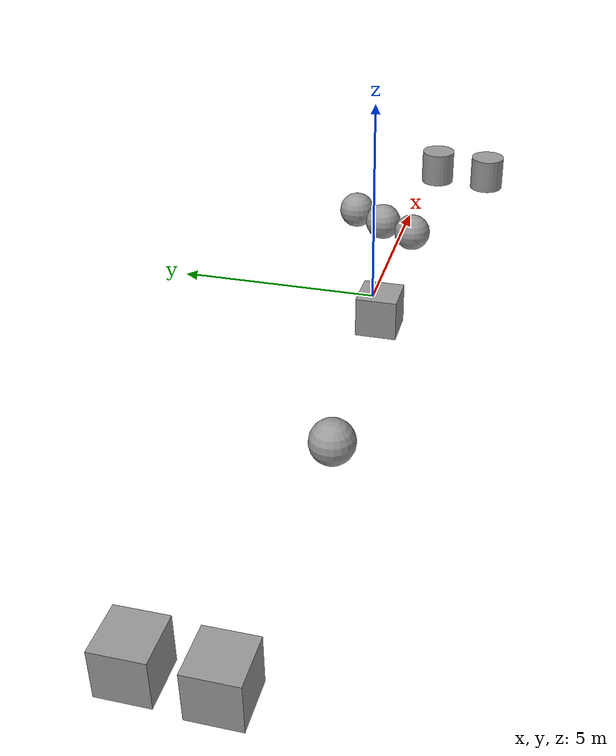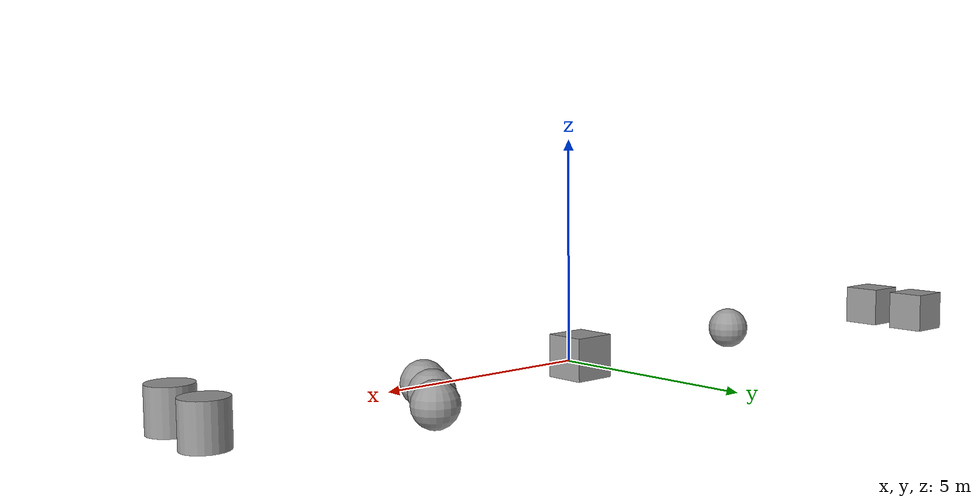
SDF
<?xml version='1.0'?>
<sdf version='1.6'>
  <model name='hall_obstacles.sdf'>
    <link name='link_0'>
      <inertial>
        <mass>2000</mass>
        <inertia>
          <ixx>333.333</ixx>
          <ixy>0</ixy>
          <ixz>0</ixz>
          <iyy>333.333</iyy>
          <iyz>0</iyz>
          <izz>333.333</izz>
        </inertia>
        <pose frame=''>0 0 0 0 -0 0</pose>
      </inertial>
      <pose frame=''>-12.2076 1.1435 0 0 -0 0</pose>
      <gravity>1</gravity>
      <self_collide>0</self_collide>
      <kinematic>0</kinematic>
      <enable_wind>0</enable_wind>
      <visual name='visual'>
        <pose frame=''>0 0 0 0 -0 0</pose>
        <geometry>
          <box>
            <size>1 1 1</size>
          </box>
        </geometry>
        <material>
          <lighting>1</lighting>
          <script>
            <uri>file://media/materials/scripts/gazebo.material</uri>
            <name>Gazebo/Grey</name>
          </script>
          <shader type='vertex'>
            <normal_map>__default__</normal_map>
          </shader>
        </material>
        <transparency>0</transparency>
        <cast_shadows>1</cast_shadows>
      </visual>
      <collision name='collision'>
        <laser_retro>0</laser_retro>
        <max_contacts>10</max_contacts>
        <pose frame=''>0 0 0 0 -0 0</pose>
        <geometry>
          <box>
            <size>1 1 1</size>
          </box>
        </geometry>
        <surface>
          <friction>
            <ode>
              <mu>1</mu>
              <mu2>1</mu2>
              <fdir1>0 0 0</fdir1>
              <slip1>0</slip1>
              <slip2>0</slip2>
            </ode>
            <torsional>
              <coefficient>1</coefficient>
              <patch_radius>0</patch_radius>
              <surface_radius>0</surface_radius>
              <use_patch_radius>1</use_patch_radius>
              <ode>
                <slip>0</slip>
              </ode>
            </torsional>
          </friction>
          <bounce>
            <restitution_coefficient>0</restitution_coefficient>
            <threshold>1e+06</threshold>
          </bounce>
          <contact>
            <collide_without_contact>0</collide_without_contact>
            <collide_without_contact_bitmask>1</collide_without_contact_bitmask>
            <collide_bitmask>1</collide_bitmask>
            <ode>
              <soft_cfm>0</soft_cfm>
              <soft_erp>0.2</soft_erp>
              <kp>1e+13</kp>
              <kd>1</kd>
              <max_vel>0.01</max_vel>
              <min_depth>0</min_depth>
            </ode>
            <bullet>
              <split_impulse>1</split_impulse>
              <split_impulse_penetration_threshold>-0.01</split_impulse_penetration_threshold>
              <soft_cfm>0</soft_cfm>
              <soft_erp>0.2</soft_erp>
              <kp>1e+13</kp>
              <kd>1</kd>
            </bullet>
          </contact>
        </surface>
      </collision>
    </link>
    <link name='link_1'>
      <inertial>
        <mass>2000</mass>
        <inertia>
          <ixx>333.333</ixx>
          <ixy>0</ixy>
          <ixz>0</ixz>
          <iyy>333.333</iyy>
          <iyz>0</iyz>
          <izz>333.333</izz>
        </inertia>
        <pose frame=''>0 0 0 0 -0 0</pose>
      </inertial>
      <pose frame=''>-12.2761 -0.378192 0 0 -0 0</pose>
      <gravity>1</gravity>
      <self_collide>0</self_collide>
      <kinematic>0</kinematic>
      <enable_wind>0</enable_wind>
      <visual name='visual'>
        <pose frame=''>0 0 0 0 -0 0</pose>
        <geometry>
          <box>
            <size>1 1 1</size>
          </box>
        </geometry>
        <material>
          <lighting>1</lighting>
          <script>
            <uri>file://media/materials/scripts/gazebo.material</uri>
            <name>Gazebo/Grey</name>
          </script>
          <shader type='vertex'>
            <normal_map>__default__</normal_map>
          </shader>
        </material>
        <transparency>0</transparency>
        <cast_shadows>1</cast_shadows>
      </visual>
      <collision name='collision'>
        <laser_retro>0</laser_retro>
        <max_contacts>10</max_contacts>
        <pose frame=''>0 0 0 0 -0 0</pose>
        <geometry>
          <box>
            <size>1 1 1</size>
          </box>
        </geometry>
        <surface>
          <friction>
            <ode>
              <mu>1</mu>
              <mu2>1</mu2>
              <fdir1>0 0 0</fdir1>
              <slip1>0</slip1>
              <slip2>0</slip2>
            </ode>
            <torsional>
              <coefficient>1</coefficient>
              <patch_radius>0</patch_radius>
              <surface_radius>0</surface_radius>
              <use_patch_radius>1</use_patch_radius>
              <ode>
                <slip>0</slip>
              </ode>
            </torsional>
          </friction>
          <bounce>
            <restitution_coefficient>0</restitution_coefficient>
            <threshold>1e+06</threshold>
          </bounce>
          <contact>
            <collide_without_contact>0</collide_without_contact>
            <collide_without_contact_bitmask>1</collide_without_contact_bitmask>
            <collide_bitmask>1</collide_bitmask>
            <ode>
              <soft_cfm>0</soft_cfm>
              <soft_erp>0.2</soft_erp>
              <kp>1e+13</kp>
              <kd>1</kd>
              <max_vel>0.01</max_vel>
              <min_depth>0</min_depth>
            </ode>
            <bullet>
              <split_impulse>1</split_impulse>
              <split_impulse_penetration_threshold>-0.01</split_impulse_penetration_threshold>
              <soft_cfm>0</soft_cfm>
              <soft_erp>0.2</soft_erp>
              <kp>1e+13</kp>
              <kd>1</kd>
            </bullet>
          </contact>
        </surface>
      </collision>
    </link>
    <link name='link_2'>
      <inertial>
        <mass>2000</mass>
        <inertia>
          <ixx>333.333</ixx>
          <ixy>0</ixy>
          <ixz>0</ixz>
          <iyy>333.333</iyy>
          <iyz>0</iyz>
          <izz>333.333</izz>
        </inertia>
        <pose frame=''>0 0 0 0 -0 0</pose>
      </inertial>
      <pose frame=''>-0.635519 -0.315968 0 0 -0 0</pose>
      <gravity>1</gravity>
      <self_collide>0</self_collide>
      <kinematic>0</kinematic>
      <enable_wind>0</enable_wind>
      <visual name='visual'>
        <pose frame=''>0 0 0 0 -0 0</pose>
        <geometry>
          <box>
            <size>1 1 1</size>
          </box>
        </geometry>
        <material>
          <lighting>1</lighting>
          <script>
            <uri>file://media/materials/scripts/gazebo.material</uri>
            <name>Gazebo/Grey</name>
          </script>
          <shader type='vertex'>
            <normal_map>__default__</normal_map>
          </shader>
        </material>
        <transparency>0</transparency>
        <cast_shadows>1</cast_shadows>
      </visual>
      <collision name='collision'>
        <laser_retro>0</laser_retro>
        <max_contacts>10</max_contacts>
        <pose frame=''>0 0 0 0 -0 0</pose>
        <geometry>
          <box>
            <size>1 1 1</size>
          </box>
        </geometry>
        <surface>
          <friction>
            <ode>
              <mu>1</mu>
              <mu2>1</mu2>
              <fdir1>0 0 0</fdir1>
              <slip1>0</slip1>
              <slip2>0</slip2>
            </ode>
            <torsional>
              <coefficient>1</coefficient>
              <patch_radius>0</patch_radius>
              <surface_radius>0</surface_radius>
              <use_patch_radius>1</use_patch_radius>
              <ode>
                <slip>0</slip>
              </ode>
            </torsional>
          </friction>
          <bounce>
            <restitution_coefficient>0</restitution_coefficient>
            <threshold>1e+06</threshold>
          </bounce>
          <contact>
            <collide_without_contact>0</collide_without_contact>
            <collide_without_contact_bitmask>1</collide_without_contact_bitmask>
            <collide_bitmask>1</collide_bitmask>
            <ode>
              <soft_cfm>0</soft_cfm>
              <soft_erp>0.2</soft_erp>
              <kp>1e+13</kp>
              <kd>1</kd>
              <max_vel>0.01</max_vel>
              <min_depth>0</min_depth>
            </ode>
            <bullet>
              <split_impulse>1</split_impulse>
              <split_impulse_penetration_threshold>-0.01</split_impulse_penetration_threshold>
              <soft_cfm>0</soft_cfm>
              <soft_erp>0.2</soft_erp>
              <kp>1e+13</kp>
              <kd>1</kd>
            </bullet>
          </contact>
        </surface>
      </collision>
    </link>
    <link name='link_3'>
      <inertial>
        <mass>1047.2</mass>
        <inertia>
          <ixx>104.72</ixx>
          <ixy>0</ixy>
          <ixz>0</ixz>
          <iyy>104.72</iyy>
          <iyz>0</iyz>
          <izz>104.72</izz>
        </inertia>
        <pose frame=''>0 0 0 0 -0 0</pose>
      </inertial>
      <pose frame=''>-6.10882 -0.518584 0 0 -0 0</pose>
      <gravity>1</gravity>
      <self_collide>0</self_collide>
      <kinematic>0</kinematic>
      <enable_wind>0</enable_wind>
      <visual name='visual'>
        <pose frame=''>0 0 0 0 -0 0</pose>
        <geometry>
          <sphere>
            <radius>0.5</radius>
          </sphere>
        </geometry>
        <material>
          <lighting>1</lighting>
          <script>
            <uri>file://media/materials/scripts/gazebo.material</uri>
            <name>Gazebo/Grey</name>
          </script>
          <shader type='vertex'>
            <normal_map>__default__</normal_map>
          </shader>
        </material>
        <transparency>0</transparency>
        <cast_shadows>1</cast_shadows>
      </visual>
      <collision name='collision'>
        <laser_retro>0</laser_retro>
        <max_contacts>10</max_contacts>
        <pose frame=''>0 0 0 0 -0 0</pose>
        <geometry>
          <sphere>
            <radius>0.5</radius>
          </sphere>
        </geometry>
        <surface>
          <friction>
            <ode>
              <mu>1</mu>
              <mu2>1</mu2>
              <fdir1>0 0 0</fdir1>
              <slip1>0</slip1>
              <slip2>0</slip2>
            </ode>
            <torsional>
              <coefficient>1</coefficient>
              <patch_radius>0</patch_radius>
              <surface_radius>0</surface_radius>
              <use_patch_radius>1</use_patch_radius>
              <ode>
                <slip>0</slip>
              </ode>
            </torsional>
          </friction>
          <bounce>
            <restitution_coefficient>0</restitution_coefficient>
            <threshold>1e+06</threshold>
          </bounce>
          <contact>
            <collide_without_contact>0</collide_without_contact>
            <collide_without_contact_bitmask>1</collide_without_contact_bitmask>
            <collide_bitmask>1</collide_bitmask>
            <ode>
              <soft_cfm>0</soft_cfm>
              <soft_erp>0.2</soft_erp>
              <kp>1e+13</kp>
              <kd>1</kd>
              <max_vel>0.01</max_vel>
              <min_depth>0</min_depth>
            </ode>
            <bullet>
              <split_impulse>1</split_impulse>
              <split_impulse_penetration_threshold>-0.01</split_impulse_penetration_threshold>
              <soft_cfm>0</soft_cfm>
              <soft_erp>0.2</soft_erp>
              <kp>1e+13</kp>
              <kd>1</kd>
            </bullet>
          </contact>
        </surface>
      </collision>
    </link>
    <link name='link_4'>
      <inertial>
        <mass>1047.2</mass>
        <inertia>
          <ixx>104.72</ixx>
          <ixy>0</ixy>
          <ixz>0</ixz>
          <iyy>104.72</iyy>
          <iyz>0</iyz>
          <izz>104.72</izz>
        </inertia>
        <pose frame=''>0 0 0 0 -0 0</pose>
      </inertial>
      <pose frame=''>3.91188 -0.269261 0 0 -0 0</pose>
      <gravity>1</gravity>
      <self_collide>0</self_collide>
      <kinematic>0</kinematic>
      <enable_wind>0</enable_wind>
      <visual name='visual'>
        <pose frame=''>0 0 0 0 -0 0</pose>
        <geometry>
          <sphere>
            <radius>0.5</radius>
          </sphere>
        </geometry>
        <material>
          <lighting>1</lighting>
          <script>
            <uri>file://media/materials/scripts/gazebo.material</uri>
            <name>Gazebo/Grey</name>
          </script>
          <shader type='vertex'>
            <normal_map>__default__</normal_map>
          </shader>
        </material>
        <transparency>0</transparency>
        <cast_shadows>1</cast_shadows>
      </visual>
      <collision name='collision'>
        <laser_retro>0</laser_retro>
        <max_contacts>10</max_contacts>
        <pose frame=''>0 0 0 0 -0 0</pose>
        <geometry>
          <sphere>
            <radius>0.5</radius>
          </sphere>
        </geometry>
        <surface>
          <friction>
            <ode>
              <mu>1</mu>
              <mu2>1</mu2>
              <fdir1>0 0 0</fdir1>
              <slip1>0</slip1>
              <slip2>0</slip2>
            </ode>
            <torsional>
              <coefficient>1</coefficient>
              <patch_radius>0</patch_radius>
              <surface_radius>0</surface_radius>
              <use_patch_radius>1</use_patch_radius>
              <ode>
                <slip>0</slip>
              </ode>
            </torsional>
          </friction>
          <bounce>
            <restitution_coefficient>0</restitution_coefficient>
            <threshold>1e+06</threshold>
          </bounce>
          <contact>
            <collide_without_contact>0</collide_without_contact>
            <collide_without_contact_bitmask>1</collide_without_contact_bitmask>
            <collide_bitmask>1</collide_bitmask>
            <ode>
              <soft_cfm>0</soft_cfm>
              <soft_erp>0.2</soft_erp>
              <kp>1e+13</kp>
              <kd>1</kd>
              <max_vel>0.01</max_vel>
              <min_depth>0</min_depth>
            </ode>
            <bullet>
              <split_impulse>1</split_impulse>
              <split_impulse_penetration_threshold>-0.01</split_impulse_penetration_threshold>
              <soft_cfm>0</soft_cfm>
              <soft_erp>0.2</soft_erp>
              <kp>1e+13</kp>
              <kd>1</kd>
            </bullet>
          </contact>
        </surface>
      </collision>
    </link>
    <link name='link_5'>
      <inertial>
        <mass>1047.2</mass>
        <inertia>
          <ixx>104.72</ixx>
          <ixy>0</ixy>
          <ixz>0</ixz>
          <iyy>104.72</iyy>
          <iyz>0</iyz>
          <izz>104.72</izz>
        </inertia>
        <pose frame=''>0 0 0 0 -0 0</pose>
      </inertial>
      <pose frame=''>4.41614 0.674261 0 0 -0 0</pose>
      <gravity>1</gravity>
      <self_collide>0</self_collide>
      <kinematic>0</kinematic>
      <enable_wind>0</enable_wind>
      <visual name='visual'>
        <pose frame=''>0 0 0 0 -0 0</pose>
        <geometry>
          <sphere>
            <radius>0.5</radius>
          </sphere>
        </geometry>
        <material>
          <lighting>1</lighting>
          <script>
            <uri>file://media/materials/scripts/gazebo.material</uri>
            <name>Gazebo/Grey</name>
          </script>
          <shader type='vertex'>
            <normal_map>__default__</normal_map>
          </shader>
        </material>
        <transparency>0</transparency>
        <cast_shadows>1</cast_shadows>
      </visual>
      <collision name='collision'>
        <laser_retro>0</laser_retro>
        <max_contacts>10</max_contacts>
        <pose frame=''>0 0 0 0 -0 0</pose>
        <geometry>
          <sphere>
            <radius>0.5</radius>
          </sphere>
        </geometry>
        <surface>
          <friction>
            <ode>
              <mu>1</mu>
              <mu2>1</mu2>
              <fdir1>0 0 0</fdir1>
              <slip1>0</slip1>
              <slip2>0</slip2>
            </ode>
            <torsional>
              <coefficient>1</coefficient>
              <patch_radius>0</patch_radius>
              <surface_radius>0</surface_radius>
              <use_patch_radius>1</use_patch_radius>
              <ode>
                <slip>0</slip>
              </ode>
            </torsional>
          </friction>
          <bounce>
            <restitution_coefficient>0</restitution_coefficient>
            <threshold>1e+06</threshold>
          </bounce>
          <contact>
            <collide_without_contact>0</collide_without_contact>
            <collide_without_contact_bitmask>1</collide_without_contact_bitmask>
            <collide_bitmask>1</collide_bitmask>
            <ode>
              <soft_cfm>0</soft_cfm>
              <soft_erp>0.2</soft_erp>
              <kp>1e+13</kp>
              <kd>1</kd>
              <max_vel>0.01</max_vel>
              <min_depth>0</min_depth>
            </ode>
            <bullet>
              <split_impulse>1</split_impulse>
              <split_impulse_penetration_threshold>-0.01</split_impulse_penetration_threshold>
              <soft_cfm>0</soft_cfm>
              <soft_erp>0.2</soft_erp>
              <kp>1e+13</kp>
              <kd>1</kd>
            </bullet>
          </contact>
        </surface>
      </collision>
    </link>
    <link name='link_6'>
      <inertial>
        <mass>1047.2</mass>
        <inertia>
          <ixx>104.72</ixx>
          <ixy>0</ixy>
          <ixz>0</ixz>
          <iyy>104.72</iyy>
          <iyz>0</iyz>
          <izz>104.72</izz>
        </inertia>
        <pose frame=''>0 0 0 0 -0 0</pose>
      </inertial>
      <pose frame=''>5.03883 1.5954 0 0 -0 0</pose>
      <gravity>1</gravity>
      <self_collide>0</self_collide>
      <kinematic>0</kinematic>
      <enable_wind>0</enable_wind>
      <visual name='visual'>
        <pose frame=''>0 0 0 0 -0 0</pose>
        <geometry>
          <sphere>
            <radius>0.5</radius>
          </sphere>
        </geometry>
        <material>
          <lighting>1</lighting>
          <script>
            <uri>file://media/materials/scripts/gazebo.material</uri>
            <name>Gazebo/Grey</name>
          </script>
          <shader type='vertex'>
            <normal_map>__default__</normal_map>
          </shader>
        </material>
        <transparency>0</transparency>
        <cast_shadows>1</cast_shadows>
      </visual>
      <collision name='collision'>
        <laser_retro>0</laser_retro>
        <max_contacts>10</max_contacts>
        <pose frame=''>0 0 0 0 -0 0</pose>
        <geometry>
          <sphere>
            <radius>0.5</radius>
          </sphere>
        </geometry>
        <surface>
          <friction>
            <ode>
              <mu>1</mu>
              <mu2>1</mu2>
              <fdir1>0 0 0</fdir1>
              <slip1>0</slip1>
              <slip2>0</slip2>
            </ode>
            <torsional>
              <coefficient>1</coefficient>
              <patch_radius>0</patch_radius>
              <surface_radius>0</surface_radius>
              <use_patch_radius>1</use_patch_radius>
              <ode>
                <slip>0</slip>
              </ode>
            </torsional>
          </friction>
          <bounce>
            <restitution_coefficient>0</restitution_coefficient>
            <threshold>1e+06</threshold>
          </bounce>
          <contact>
            <collide_without_contact>0</collide_without_contact>
            <collide_without_contact_bitmask>1</collide_without_contact_bitmask>
            <collide_bitmask>1</collide_bitmask>
            <ode>
              <soft_cfm>0</soft_cfm>
              <soft_erp>0.2</soft_erp>
              <kp>1e+13</kp>
              <kd>1</kd>
              <max_vel>0.01</max_vel>
              <min_depth>0</min_depth>
            </ode>
            <bullet>
              <split_impulse>1</split_impulse>
              <split_impulse_penetration_threshold>-0.01</split_impulse_penetration_threshold>
              <soft_cfm>0</soft_cfm>
              <soft_erp>0.2</soft_erp>
              <kp>1e+13</kp>
              <kd>1</kd>
            </bullet>
          </contact>
        </surface>
      </collision>
    </link>
    <link name='link_7'>
      <inertial>
        <mass>1570.8</mass>
        <inertia>
          <ixx>229.074</ixx>
          <ixy>0</ixy>
          <ixz>0</ixz>
          <iyy>229.074</iyy>
          <iyz>0</iyz>
          <izz>196.35</izz>
        </inertia>
        <pose frame=''>0 0 0 0 -0 0</pose>
      </inertial>
      <pose frame=''>8.85175 -1.76844 0 0 -0 0</pose>
      <gravity>1</gravity>
      <self_collide>0</self_collide>
      <kinematic>0</kinematic>
      <enable_wind>0</enable_wind>
      <visual name='visual'>
        <pose frame=''>0 0 0 0 -0 0</pose>
        <geometry>
          <cylinder>
            <radius>0.5</radius>
            <length>1</length>
          </cylinder>
        </geometry>
        <material>
          <lighting>1</lighting>
          <script>
            <uri>file://media/materials/scripts/gazebo.material</uri>
            <name>Gazebo/Grey</name>
          </script>
          <shader type='vertex'>
            <normal_map>__default__</normal_map>
          </shader>
        </material>
        <transparency>0</transparency>
        <cast_shadows>1</cast_shadows>
      </visual>
      <collision name='collision'>
        <laser_retro>0</laser_retro>
        <max_contacts>10</max_contacts>
        <pose frame=''>0 0 0 0 -0 0</pose>
        <geometry>
          <cylinder>
            <radius>0.5</radius>
            <length>1</length>
          </cylinder>
        </geometry>
        <surface>
          <friction>
            <ode>
              <mu>1</mu>
              <mu2>1</mu2>
              <fdir1>0 0 0</fdir1>
              <slip1>0</slip1>
              <slip2>0</slip2>
            </ode>
            <torsional>
              <coefficient>1</coefficient>
              <patch_radius>0</patch_radius>
              <surface_radius>0</surface_radius>
              <use_patch_radius>1</use_patch_radius>
              <ode>
                <slip>0</slip>
              </ode>
            </torsional>
          </friction>
          <bounce>
            <restitution_coefficient>0</restitution_coefficient>
            <threshold>1e+06</threshold>
          </bounce>
          <contact>
            <collide_without_contact>0</collide_without_contact>
            <collide_without_contact_bitmask>1</collide_without_contact_bitmask>
            <collide_bitmask>1</collide_bitmask>
            <ode>
              <soft_cfm>0</soft_cfm>
              <soft_erp>0.2</soft_erp>
              <kp>1e+13</kp>
              <kd>1</kd>
              <max_vel>0.01</max_vel>
              <min_depth>0</min_depth>
            </ode>
            <bullet>
              <split_impulse>1</split_impulse>
              <split_impulse_penetration_threshold>-0.01</split_impulse_penetration_threshold>
              <soft_cfm>0</soft_cfm>
              <soft_erp>0.2</soft_erp>
              <kp>1e+13</kp>
              <kd>1</kd>
            </bullet>
          </contact>
        </surface>
      </collision>
    </link>
    <link name='link_8'>
      <inertial>
        <mass>1570.8</mass>
        <inertia>
          <ixx>229.074</ixx>
          <ixy>0</ixy>
          <ixz>0</ixz>
          <iyy>229.074</iyy>
          <iyz>0</iyz>
          <izz>196.35</izz>
        </inertia>
        <pose frame=''>0 0 0 0 -0 0</pose>
      </inertial>
      <pose frame=''>9.00945 -0.162724 0 0 -0 0</pose>
      <gravity>1</gravity>
      <self_collide>0</self_collide>
      <kinematic>0</kinematic>
      <enable_wind>0</enable_wind>
      <visual name='visual'>
        <pose frame=''>0 0 0 0 -0 0</pose>
        <geometry>
          <cylinder>
            <radius>0.5</radius>
            <length>1</length>
          </cylinder>
        </geometry>
        <material>
          <lighting>1</lighting>
          <script>
            <uri>file://media/materials/scripts/gazebo.material</uri>
            <name>Gazebo/Grey</name>
          </script>
          <shader type='vertex'>
            <normal_map>__default__</normal_map>
          </shader>
        </material>
        <transparency>0</transparency>
        <cast_shadows>1</cast_shadows>
      </visual>
      <collision name='collision'>
        <laser_retro>0</laser_retro>
        <max_contacts>10</max_contacts>
        <pose frame=''>0 0 0 0 -0 0</pose>
        <geometry>
          <cylinder>
            <radius>0.5</radius>
            <length>1</length>
          </cylinder>
        </geometry>
        <surface>
          <friction>
            <ode>
              <mu>1</mu>
              <mu2>1</mu2>
              <fdir1>0 0 0</fdir1>
              <slip1>0</slip1>
              <slip2>0</slip2>
            </ode>
            <torsional>
              <coefficient>1</coefficient>
              <patch_radius>0</patch_radius>
              <surface_radius>0</surface_radius>
              <use_patch_radius>1</use_patch_radius>
              <ode>
                <slip>0</slip>
              </ode>
            </torsional>
          </friction>
          <bounce>
            <restitution_coefficient>0</restitution_coefficient>
            <threshold>1e+06</threshold>
          </bounce>
          <contact>
            <collide_without_contact>0</collide_without_contact>
            <collide_without_contact_bitmask>1</collide_without_contact_bitmask>
            <collide_bitmask>1</collide_bitmask>
            <ode>
              <soft_cfm>0</soft_cfm>
              <soft_erp>0.2</soft_erp>
              <kp>1e+13</kp>
              <kd>1</kd>
              <max_vel>0.01</max_vel>
              <min_depth>0</min_depth>
            </ode>
            <bullet>
              <split_impulse>1</split_impulse>
              <split_impulse_penetration_threshold>-0.01</split_impulse_penetration_threshold>
              <soft_cfm>0</soft_cfm>
              <soft_erp>0.2</soft_erp>
              <kp>1e+13</kp>
              <kd>1</kd>
            </bullet>
          </contact>
        </surface>
      </collision>
    </link>
    <static>0</static>
    <allow_auto_disable>1</allow_auto_disable>
  </model>
</sdf>
